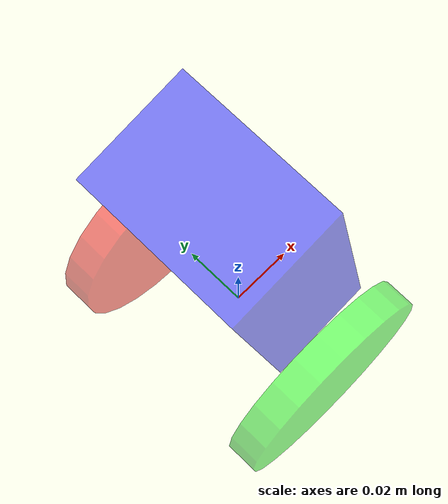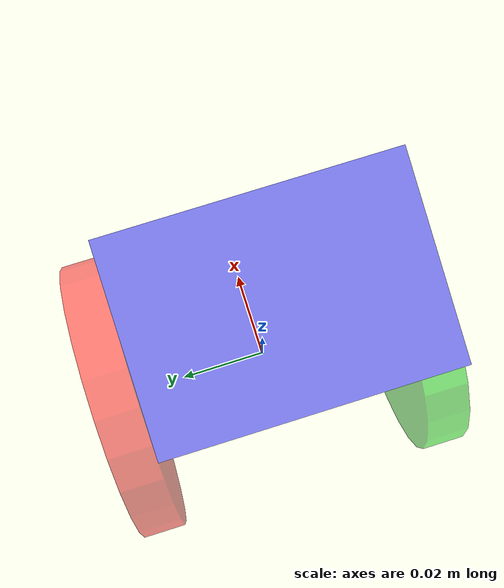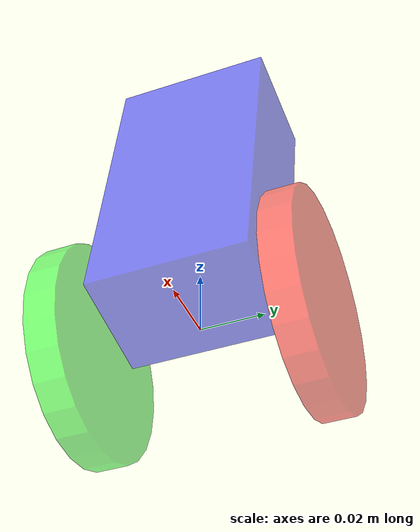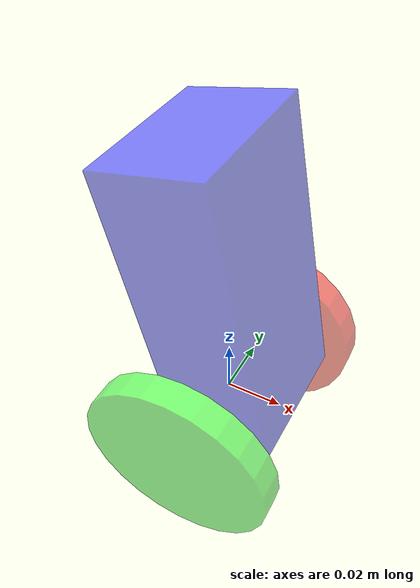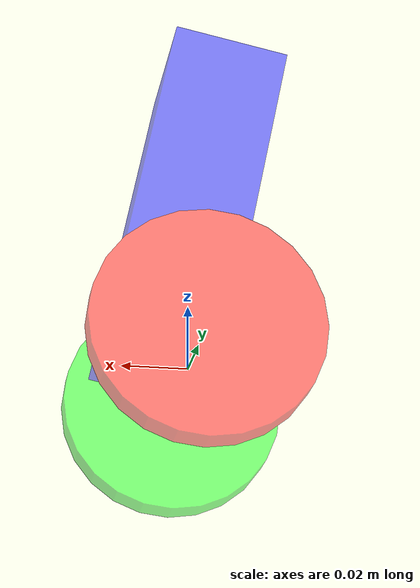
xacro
<?xml version="1.0"?>
<robot name="edumip_my_robot" xmlns:xacro="http://www.ros.org/wiki/xacro">

  <!-- Numerical Macros - units are meters and radians -->
  <xacro:property name="wheel_separation" value="0.070" />
  <xacro:property name="wheel_radius"     value="0.034" />
  <xacro:property name="wheel_width"      value="0.010" />
  <xacro:property name="body_height"      value="0.1"   />
  <xacro:property name="body_width"       value="0.050" />
  <xacro:property name="body_length"      value="0.035" />

  <link name="edumip_body">

    <visual>
      <origin xyz="0 0 ${0.5*body_height}" rpy="0 -0.20 0"/>
      <geometry>
        <box size="${body_length} ${body_width} ${body_height}"/>
      </geometry>
      <material name="Blue">
        <color rgba="0 0.0 1.0 0.5"/>
      </material>
    </visual>

    <collision>
      <origin xyz="0 0 ${0.5*body_height}" rpy="0 -0.17 0"/>
      <geometry>
        <box size="${body_length} ${body_width} ${body_height}"/>
      </geometry>
    </collision>

    <inertial>
      <origin xyz="0 0 -0.5" rpy="0 0 0"/>
      <mass value="1"/>
      <inertia ixx="1" ixy="0" ixz="0" iyy="1" iyz="0" izz="1"/>
    </inertial>

  </link>

  <link name="wheelR">

    <visual>
      <origin xyz="0 0 0" rpy="1.57079 0  0" />
      <geometry>
        <cylinder length="${wheel_width}" radius="${wheel_radius}"/>
      </geometry>
      <material name="Green">
        <color rgba="0.0 1.0 0.0 0.5"/>
      </material>
    </visual>

    <collision>
      <origin xyz="0 0 0" rpy="1.57079 0  0" />
      <geometry>
        <cylinder length="${wheel_width}" radius="${wheel_radius}"/>
      </geometry>
    </collision>

    <inertial>
      <origin xyz="0 0 -0.0" rpy="0 0 0"/>
      <mass value="1"/>
      <inertia ixx="0.1" ixy="0" ixz="0" iyy="1" iyz="0" izz="0.1"/>
    </inertial>

  </link>

  <link name="wheelL">

    <visual>
      <origin xyz="0 0 0" rpy="1.57079 0  0" />
      <geometry>
        <cylinder length="${wheel_width}" radius="${wheel_radius}"/>
      </geometry>
      <material name="Red">
        <color rgba="1.0 0.0 0.0 0.5"/>
      </material>
    </visual>

    <collision>
      <origin xyz="0 0 0" rpy="1.57079 0  0" />
      <geometry>
        <cylinder length="${wheel_width}" radius="${wheel_radius}"/>
      </geometry>
    </collision>

    <inertial>
      <origin xyz="0 0 -0.0" rpy="0 0 0"/>
      <mass value="1"/>
      <inertia ixx="0.1" ixy="0" ixz="0" iyy="1" iyz="0" izz="0.1"/>
    </inertial>

  </link>

  <joint name="jointR" type="continuous">
    <parent link="edumip_body"/>
    <child link="wheelR"/>
    <origin xyz="0 ${-wheel_separation * 0.5} 0" rpy="0 0 0" />
    <axis xyz="0 1 0" />
  </joint>

  <joint name="jointL" type="continuous">
    <parent link="edumip_body"/>
    <child link="wheelL"/>
    <origin xyz="0 ${+wheel_separation * 0.5} 0" rpy="0 0 0" />
    <axis xyz="0 1 0" />
  </joint>

  <gazebo reference="edumip_body">
    <mu1>0.2</mu1>
    <mu2>0.2</mu2>
    <material>Gazebo/Blue</material>
  </gazebo>

  <gazebo reference="wheelR">
    <mu1>0.2</mu1>
    <mu2>0.2</mu2>
    <material>Gazebo/Green</material>
  </gazebo>

  <gazebo reference="wheelL">
    <mu1>0.2</mu1>
    <mu2>0.2</mu2>
    <material>Gazebo/Red</material>
  </gazebo>

  <gazebo>
   <plugin name="edumip_balance_ros_gazebo_plugin" filename="libedumip_balance_ros_gazebo_plugin.so">
   <rosDebugLevel>3</rosDebugLevel>
   <updateRate>100</updateRate>
   <robotBaseFrame>3dof_body</robotBaseFrame>
   <leftJoint>jointL</leftJoint>
   <rightJoint>jointR</rightJoint>
   <wheelSeparation>${wheel_separation}</wheelSeparation>
   <wheelDiameter>0.068</wheelDiameter>
   <commandTopic>/edumip/cmd</commandTopic>
   <stateTopic>/edumip/state</stateTopic>
   </plugin>
  </gazebo>

</robot>
